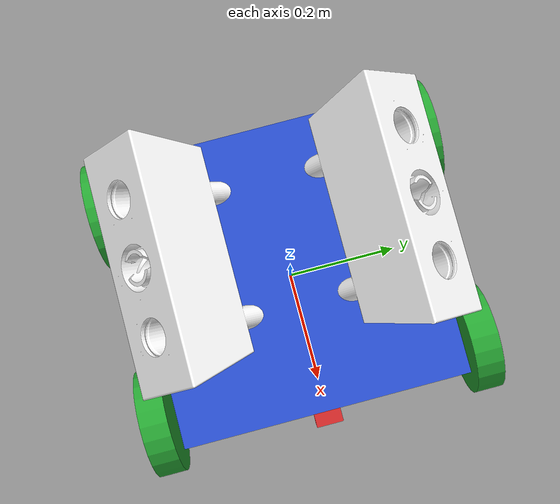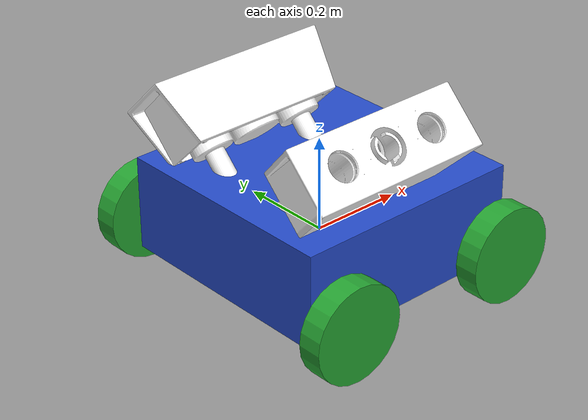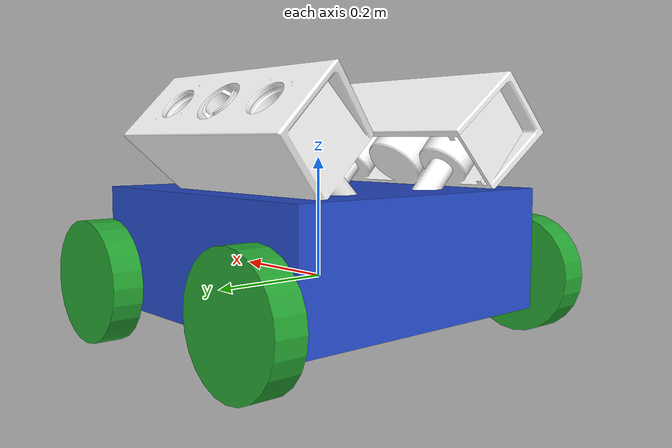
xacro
<?xml version='1.0'?>

<robot name="atom" xmlns:xacro="http://www.ros.org/wiki/xacro">
	<xacro:property name="robot_name" value="atom" />
	<xacro:property name="robot_chassis_mass" value="15"/>
	<xacro:property name="robot_chassis_length" value="0.2"/>
	<xacro:property name="robot_chassis_radius" value="0.25"/>
	<xacro:property name="robot_caster_wheel_radius" value="0.05"/>
	<xacro:property name="robot_caster_wheel_radius_collision" value="0.0499"/>

	<xacro:property name="robot_wheel_mass" value="5"/>
	<xacro:property name="robot_wheel_length" value="0.05"/>
	<xacro:property name="robot_wheel_radius" value="0.1"/>

	<xacro:property name="camera_mass" value="0.1"/>
	<xacro:property name="hokoyu_mass" value="1e-5"/>

	<!-- Chassis -->
	<link name="chassis">
		<pose>0 0 0.1 0 0 0</pose>

		<inertial>
			<mass value="${robot_chassis_mass}"/>
      		<origin xyz="0.0 0 0" rpy=" 0 0 0"/>

      		<inertia
      			ixx="0.147116667" ixy="0" ixz="0"
      			iyy="0.334951167" iyz="0"
      			izz="0.3978345"
      		/>
		</inertial>

		<collision name="collision">
			<origin xyz="0 0 0.05" rpy=" 0 0 0"/>
			<geometry>
				<box size="0.5 0.5 0.2"/>
			</geometry>
		</collision>

		<visual name="chassis_visual">
			<origin xyz="0 0 0.05" rpy=" 0 0 0"/>
			<geometry>
				<box size="0.5 0.5 0.2"/>
			</geometry>

		</visual>

	</link>

	<!-- Fuel Inlet 1 -->
	<link name="fuel_inlet1">
        <visual>
            <origin xyz="-0.25 0 0.15" rpy="-0.785 0 0"/>
            <geometry>
                <mesh filename="package://robotic-arm-refuelling/meshes/refueller/receptacle.stl" scale="0.003 0.003 0.003" />
            </geometry>
            <material name="">
                <color rgba="1 1 1 1" />
            </material>
        </visual>
        <collision>
            <origin xyz="-0.25 0 0.15" rpy="-0.785 0 0"/>
            <geometry>
                <mesh filename="package://robotic-arm-refuelling/meshes/refueller/receptacle.stl" scale="0.003 0.003 0.003" />
            </geometry>
        </collision>
        <inertial>
        <mass value="10"/>
        <inertia ixx="0.4" ixy="0.0" ixz="0.0" iyy="0.4" iyz="0.0" izz="0.4"/>
        </inertial>
    </link>

	<!-- Fuel Inlet 2 -->
	<link name="fuel_inlet2">
        <visual>
            <origin xyz="-0.25 -0.1 0.06" rpy="0.785 0 0"/>
            <geometry>
                <mesh filename="package://robotic-arm-refuelling/meshes/refueller/receptacle.stl" scale="0.003 0.003 0.003" />
            </geometry>
            <material name="">
                <color rgba="1 1 1 1" />
            </material>
        </visual>
        <collision>
            <origin xyz="-0.25 -0.1 0.06" rpy="0.785 0 0"/>
            <geometry>
                <mesh filename="package://robotic-arm-refuelling/meshes/refueller/receptacle.stl" scale="0.003 0.003 0.003" />
            </geometry>
        </collision>
        <inertial>
        <mass value="10"/>
        <inertia ixx="0.4" ixy="0.0" ixz="0.0" iyy="0.4" iyz="0.0" izz="0.4"/>
        </inertial>
    </link>

	<!-- Right Wheel Back -->
	<link name="right_wheel_back">
		<inertial>
			<mass value="${robot_wheel_mass}"/>
			<origin xyz="0 0 0" rpy="0 1.5707 1.5707"/>
			<inertia
				ixx="0.1" ixy="0.0" ixz="0.0"
				iyy="0.1" iyz="0.0"
				izz="0.1"
			/>
		</inertial>

		<visual>
			<origin xyz="0 0 0" rpy="0 1.5707 1.5707"/>
			<geometry>
				<cylinder radius="${robot_wheel_radius}" length="${robot_wheel_length}"/>
			</geometry>
		</visual>

		<collision>
			<origin xyz="0 0 0" rpy="0 1.5707 1.5707"/>
			<geometry>
				<cylinder radius="${robot_wheel_radius}" length="${robot_wheel_length}"/>
			</geometry>
		</collision>

	</link>

	<!-- Right Wheel Front-->
	<link name="right_wheel_front">
		<inertial>
			<mass value="${robot_wheel_mass}"/>
			<origin xyz="0 0 0" rpy="0 1.5707 1.5707"/>
			<inertia
				ixx="0.1" ixy="0.0" ixz="0.0"
				iyy="0.1" iyz="0.0"
				izz="0.1"
			/>
		</inertial>

		<visual>
			<origin xyz="0 0 0" rpy="0 1.5707 1.5707"/>
			<geometry>
				<cylinder radius="${robot_wheel_radius}" length="${robot_wheel_length}"/>
			</geometry>
		</visual>

		<collision>
			<origin xyz="0 0 0" rpy="0 1.5707 1.5707"/>
			<geometry>
				<cylinder radius="${robot_wheel_radius}" length="${robot_wheel_length}"/>
			</geometry>
		</collision>

	</link>

	<!-- Left wheel Back-->
	<link name="left_wheel_back">
		<inertial>
			<mass value="${robot_wheel_mass}"/>
			<origin xyz="0 0 0" rpy="0 1.5707 1.5707"/>
			<inertia
				ixx="0.1" ixy="0.0" ixz="0.0"
				iyy="0.1" iyz="0.0"
				izz="0.1"
			/>
		</inertial>

		<visual>
			<origin xyz="0 0 0" rpy="0 1.5707 1.5707"/>
			<geometry>
				<cylinder radius="${robot_wheel_radius}" length="${robot_wheel_length}"/>
			</geometry>
		</visual>

		<collision>
			<origin xyz="0 0 0" rpy="0 1.5707 1.5707"/>
			<geometry>
				<cylinder radius="${robot_wheel_radius}" length="${robot_wheel_length}"/>
			</geometry>
		</collision>

	</link>

	<!-- Left wheel Front-->
	<link name="left_wheel_front">
		<inertial>
			<mass value="${robot_wheel_mass}"/>
			<origin xyz="0 0 0" rpy="0 1.5707 1.5707"/>
			<inertia
				ixx="0.1" ixy="0.0" ixz="0.0"
				iyy="0.1" iyz="0.0"
				izz="0.1"
			/>
		</inertial>

		<visual>
			<origin xyz="0 0 0" rpy="0 1.5707 1.5707"/>
			<geometry>
				<cylinder radius="${robot_wheel_radius}" length="${robot_wheel_length}"/>
			</geometry>
		</visual>

		<collision>
			<origin xyz="0 0 0" rpy="0 1.5707 1.5707"/>
			<geometry>
				<cylinder radius="${robot_wheel_radius}" length="${robot_wheel_length}"/>
			</geometry>
		</collision>

	</link>

	<!-- Camera -->
	<link name="camera">
		<inertial>
			<mass value="${camera_mass}"/>
			<origin xyz="0 0 0" rpy="0 0 0"/>
			<inertia
		        ixx="1e-6" ixy="0.0" ixz="0.0"
		        iyy="1e-6" iyz="0.0"
		        izz="1e-6"
		      />
		</inertial>

		<visual>
			<origin xyz="0 0 0" rpy="0 0 0"/>
			<geometry>
				<box size="0.05 0.05 0.05"/>
			</geometry>
		</visual>

		<collision>
			<origin xyz="0 0 0" rpy="0 0 0"/>
			<geometry>
				<box size="0.05 0.05 0.05"/>
			</geometry>
		</collision>
	</link>

	<!-- Project center to the ground -->
	<link name="robot_footprint"></link>

	<!-- Define Joints -->

	<!-- Right Wheel Joint Back-->
	<joint type="continuous" name="right_wheel_hinge_back">
	    <origin xyz="-0.2 -0.30 0" rpy="0 0 0" />
	    <parent link="chassis"/>
	    <child link="right_wheel_back" />
	    <axis xyz="0 1 0" rpy="0 0 0" />
	    <limit effort="10000" velocity="1000" />
	    <dynamics damping="1.0" friction="1.0" />
	</joint>

	<!-- Right Wheel Joint Front-->
	<joint type="continuous" name="right_wheel_hinge_front">
	    <origin xyz="0.2 -0.30 0" rpy="0 0 0" />
	    <parent link="chassis"/>
	    <child link="right_wheel_front" />
	    <axis xyz="0 1 0" rpy="0 0 0" />
	    <limit effort="10000" velocity="1000" />
	    <dynamics damping="1.0" friction="1.0" />
	</joint>

	<!-- Left Wheel Joint Back-->
	<joint type="continuous" name="left_wheel_hinge_back">
	    <origin xyz="-0.2 0.30 0" rpy="0 0 0" />
	    <parent link="chassis"/>
	    <child link="left_wheel_back" />
	    <axis xyz="0 1 0" rpy="0 0 0" />
	    <limit effort="10000" velocity="1000" />
	    <dynamics damping="1.0" friction="1.0" />
	</joint>

	<!-- Left Wheel Joint Front-->
	<joint type="continuous" name="left_wheel_hinge_front">
	    <origin xyz="0.2 0.30 0" rpy="0 0 0" />
	    <parent link="chassis"/>
	    <child link="left_wheel_front" />
	    <axis xyz="0 1 0" rpy="0 0 0" />
	    <limit effort="10000" velocity="1000" />
	    <dynamics damping="1.0" friction="1.0" />
	</joint>

	<!-- Camera Joint -->
	<joint name="camera_joint" type="fixed">
		<origin xyz="0.26 0 0" rpy="0 0 0" />
		<parent link="chassis"/>
		<child link="camera" />
		<axis xyz="0 1 0"/>
	</joint>

	<joint name="robot_footprint_joint" type="fixed">
		<origin xyz="0 0 0" rpy="0 0 0" />
		<parent link="robot_footprint"/>
		<child link="chassis" />
	</joint>

	<!-- Fuel Inlet Joint 1 -->
	<joint name="fuel_joint1" type="fixed">
        <origin xyz="0 0 0" rpy="0 0 0"/>
        <axis xyz="0 0 1"/>
        <parent link="chassis"/>
        <child link="fuel_inlet1"/>
    </joint>

	<!-- Fuel Inlet Joint 2 -->
	<joint name="fuel_joint2" type="fixed">
        <origin xyz="0 0 0" rpy="0 0 0"/>
        <axis xyz="0 0 1"/>
        <parent link="chassis"/>
        <child link="fuel_inlet2"/>
    </joint>

	<!-- Color of bot -->
	<gazebo reference="left_wheel_front">
		<material>Gazebo/Green</material>
		<kp>1000000.0</kp> <!-- kp and kd for rubber -->
		<kd>100.0</kd>
		<mu1>1.0</mu1>
		<mu2>1.0</mu2>
		<maxVel>1.0</maxVel>
		<minDepth>0.00</minDepth>
	</gazebo>

	<gazebo reference="left_wheel_back">
		<material>Gazebo/Green</material>
		<kp>1000000.0</kp> <!-- kp and kd for rubber -->
		<kd>100.0</kd>
		<mu1>1.0</mu1>
		<mu2>1.0</mu2>
		<maxVel>1.0</maxVel>
		<minDepth>0.00</minDepth>
	</gazebo>

	<gazebo reference="right_wheel_front">
		<material>Gazebo/Green</material>
		<kp>1000000.0</kp> <!-- kp and kd for rubber -->
		<kd>100.0</kd>
		<mu1>1.0</mu1>
		<mu2>1.0</mu2>
		<maxVel>1.0</maxVel>
		<minDepth>0.00</minDepth>
	</gazebo>
	<gazebo reference="right_wheel_back">
		<material>Gazebo/Green</material>
		<kp>1000000.0</kp> <!-- kp and kd for rubber -->
		<kd>100.0</kd>
		<mu1>1.0</mu1>
		<mu2>1.0</mu2>
		<maxVel>1.0</maxVel>
		<minDepth>0.00</minDepth>
	</gazebo>

	<gazebo reference="camera">
		<material>Gazebo/Red</material>
	</gazebo>

	<gazebo reference="chassis">
		<material>Gazebo/Blue</material>
	</gazebo>

	<!-- Motor, Camera and Lidar Simulation -->
	<gazebo>

		<plugin name="skid_steer_drive_controller" filename="libgazebo_ros_skid_steer_drive.so">
			<updateRate>10.0</updateRate>
			<robotNamespace>/atom</robotNamespace>
			<leftFrontJoint>left_wheel_hinge_front</leftFrontJoint>
			<rightFrontJoint>right_wheel_hinge_front</rightFrontJoint>
			<leftRearJoint>left_wheel_hinge_back</leftRearJoint>
			<rightRearJoint>right_wheel_hinge_back</rightRearJoint>
			<wheelSeparation>0.4</wheelSeparation>
			<wheelDiameter>0.2</wheelDiameter>
			<robotBaseFrame>robot_footprint</robotBaseFrame>
			<torque>10</torque>

			<topicName>cmd_vel</topicName>
			<odometryTopic>odom</odometryTopic>
			<odometryFrame>odom</odometryFrame>

			<commandTopic>cmd_vel</commandTopic>
			<topic_name_twist>cmd_vel</topic_name_twist>
			<topic_name_odometry>odom</topic_name_odometry>
			<topic_name_joint>joint</topic_name_joint>

			<broadcastTF>true</broadcastTF>

			<covariance_x>0.0001</covariance_x>
			<covariance_y>0.0001</covariance_y>
			<covariance_yaw>0.01</covariance_yaw>
		</plugin>

	</gazebo>

	<!-- camera -->
	<gazebo reference="camera">
		<sensor type="camera" name="camera1">
			<visualize>true</visualize>
			<update_rate>30.0</update_rate>
			<camera name="head">
				<horizontal_fov>1.3962634</horizontal_fov>
				<image>
				<width>800</width>
				<height>800</height>
				<format>R8G8B8</format>
				</image>
				<clip>
				<near>0.02</near>
				<far>300</far>
				</clip>
			</camera>
			<plugin name="camera_controller" filename="libgazebo_ros_camera.so">
				<robotNamespace>/atom</robotNamespace>
				<alwaysOn>true</alwaysOn>
				<updateRate>0.0</updateRate>
				<cameraName>camera</cameraName>
				<imageTopicName>rgb/image_raw</imageTopicName>
				<cameraInfoTopicName>rgb/camera_info</cameraInfoTopicName>
				<frameName>camera</frameName>
				<hackBaseline>0.07</hackBaseline>
				<distortionK1>0.0</distortionK1>
				<distortionK2>0.0</distortionK2>
				<distortionK3>0.0</distortionK3>
				<distortionT1>0.0</distortionT1>
				<distortionT2>0.0</distortionT2>
			</plugin>
		</sensor>
  </gazebo>

</robot>
